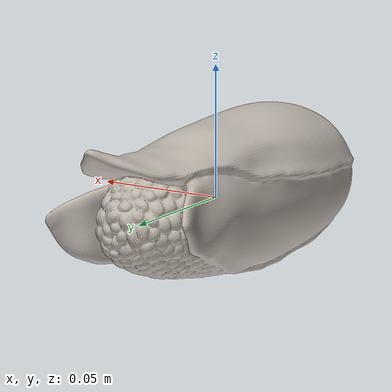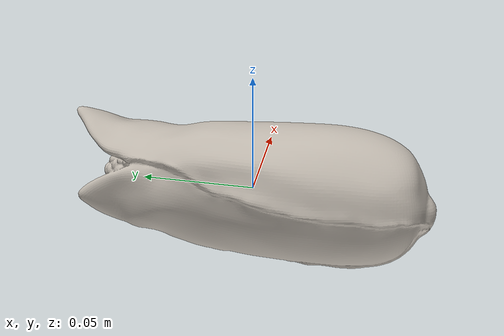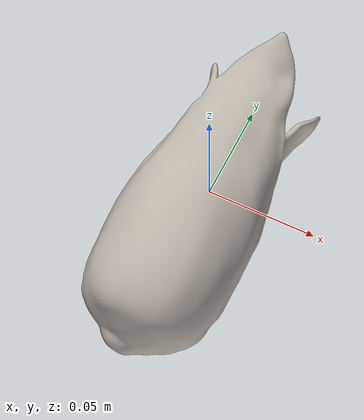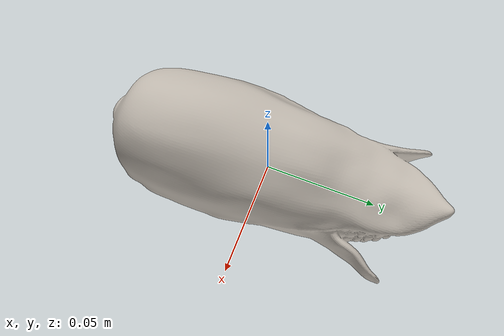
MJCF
<?xml version='1.0' encoding='utf-8'?>
<mujoco model="corn_11">
  <asset>
    <mesh file="visual/model_normalized_0.obj" name="model_normalized_0_vis" scale="0.15499999999999997 0.15499999999999997 0.15499999999999997" refquat="0.7071067811865475 0.7071067811865476 0.0 0.0" />
    <mesh file="collision/model_normalized_collision_22.obj" name="model_normalized_collision_22._coll" scale="0.15499999999999997 0.15499999999999997 0.15499999999999997" refquat="0.7071067811865475 0.7071067811865476 0.0 0.0" />
    <mesh file="collision/model_normalized_collision_23.obj" name="model_normalized_collision_23._coll" scale="0.15499999999999997 0.15499999999999997 0.15499999999999997" refquat="0.7071067811865475 0.7071067811865476 0.0 0.0" />
    <mesh file="collision/model_normalized_collision_21.obj" name="model_normalized_collision_21._coll" scale="0.15499999999999997 0.15499999999999997 0.15499999999999997" refquat="0.7071067811865475 0.7071067811865476 0.0 0.0" />
    <mesh file="collision/model_normalized_collision_20.obj" name="model_normalized_collision_20._coll" scale="0.15499999999999997 0.15499999999999997 0.15499999999999997" refquat="0.7071067811865475 0.7071067811865476 0.0 0.0" />
    <mesh file="collision/model_normalized_collision_24.obj" name="model_normalized_collision_24._coll" scale="0.15499999999999997 0.15499999999999997 0.15499999999999997" refquat="0.7071067811865475 0.7071067811865476 0.0 0.0" />
    <mesh file="collision/model_normalized_collision_30.obj" name="model_normalized_collision_30._coll" scale="0.15499999999999997 0.15499999999999997 0.15499999999999997" refquat="0.7071067811865475 0.7071067811865476 0.0 0.0" />
    <mesh file="collision/model_normalized_collision_18.obj" name="model_normalized_collision_18._coll" scale="0.15499999999999997 0.15499999999999997 0.15499999999999997" refquat="0.7071067811865475 0.7071067811865476 0.0 0.0" />
    <mesh file="collision/model_normalized_collision_19.obj" name="model_normalized_collision_19._coll" scale="0.15499999999999997 0.15499999999999997 0.15499999999999997" refquat="0.7071067811865475 0.7071067811865476 0.0 0.0" />
    <mesh file="collision/model_normalized_collision_31.obj" name="model_normalized_collision_31._coll" scale="0.15499999999999997 0.15499999999999997 0.15499999999999997" refquat="0.7071067811865475 0.7071067811865476 0.0 0.0" />
    <mesh file="collision/model_normalized_collision_25.obj" name="model_normalized_collision_25._coll" scale="0.15499999999999997 0.15499999999999997 0.15499999999999997" refquat="0.7071067811865475 0.7071067811865476 0.0 0.0" />
    <mesh file="collision/model_normalized_collision_27.obj" name="model_normalized_collision_27._coll" scale="0.15499999999999997 0.15499999999999997 0.15499999999999997" refquat="0.7071067811865475 0.7071067811865476 0.0 0.0" />
    <mesh file="collision/model_normalized_collision_26.obj" name="model_normalized_collision_26._coll" scale="0.15499999999999997 0.15499999999999997 0.15499999999999997" refquat="0.7071067811865475 0.7071067811865476 0.0 0.0" />
    <mesh file="collision/model_normalized_collision_9.obj" name="model_normalized_collision_9._coll" scale="0.15499999999999997 0.15499999999999997 0.15499999999999997" refquat="0.7071067811865475 0.7071067811865476 0.0 0.0" />
    <mesh file="collision/model_normalized_collision_8.obj" name="model_normalized_collision_8._coll" scale="0.15499999999999997 0.15499999999999997 0.15499999999999997" refquat="0.7071067811865475 0.7071067811865476 0.0 0.0" />
    <mesh file="collision/model_normalized_collision_6.obj" name="model_normalized_collision_6._coll" scale="0.15499999999999997 0.15499999999999997 0.15499999999999997" refquat="0.7071067811865475 0.7071067811865476 0.0 0.0" />
    <mesh file="collision/model_normalized_collision_7.obj" name="model_normalized_collision_7._coll" scale="0.15499999999999997 0.15499999999999997 0.15499999999999997" refquat="0.7071067811865475 0.7071067811865476 0.0 0.0" />
    <mesh file="collision/model_normalized_collision_5.obj" name="model_normalized_collision_5._coll" scale="0.15499999999999997 0.15499999999999997 0.15499999999999997" refquat="0.7071067811865475 0.7071067811865476 0.0 0.0" />
    <mesh file="collision/model_normalized_collision_4.obj" name="model_normalized_collision_4._coll" scale="0.15499999999999997 0.15499999999999997 0.15499999999999997" refquat="0.7071067811865475 0.7071067811865476 0.0 0.0" />
    <mesh file="collision/model_normalized_collision_0.obj" name="model_normalized_collision_0._coll" scale="0.15499999999999997 0.15499999999999997 0.15499999999999997" refquat="0.7071067811865475 0.7071067811865476 0.0 0.0" />
    <mesh file="collision/model_normalized_collision_1.obj" name="model_normalized_collision_1._coll" scale="0.15499999999999997 0.15499999999999997 0.15499999999999997" refquat="0.7071067811865475 0.7071067811865476 0.0 0.0" />
    <mesh file="collision/model_normalized_collision_3.obj" name="model_normalized_collision_3._coll" scale="0.15499999999999997 0.15499999999999997 0.15499999999999997" refquat="0.7071067811865475 0.7071067811865476 0.0 0.0" />
    <mesh file="collision/model_normalized_collision_2.obj" name="model_normalized_collision_2._coll" scale="0.15499999999999997 0.15499999999999997 0.15499999999999997" refquat="0.7071067811865475 0.7071067811865476 0.0 0.0" />
    <mesh file="collision/model_normalized_collision_17.obj" name="model_normalized_collision_17._coll" scale="0.15499999999999997 0.15499999999999997 0.15499999999999997" refquat="0.7071067811865475 0.7071067811865476 0.0 0.0" />
    <mesh file="collision/model_normalized_collision_16.obj" name="model_normalized_collision_16._coll" scale="0.15499999999999997 0.15499999999999997 0.15499999999999997" refquat="0.7071067811865475 0.7071067811865476 0.0 0.0" />
    <mesh file="collision/model_normalized_collision_28.obj" name="model_normalized_collision_28._coll" scale="0.15499999999999997 0.15499999999999997 0.15499999999999997" refquat="0.7071067811865475 0.7071067811865476 0.0 0.0" />
    <mesh file="collision/model_normalized_collision_14.obj" name="model_normalized_collision_14._coll" scale="0.15499999999999997 0.15499999999999997 0.15499999999999997" refquat="0.7071067811865475 0.7071067811865476 0.0 0.0" />
    <mesh file="collision/model_normalized_collision_15.obj" name="model_normalized_collision_15._coll" scale="0.15499999999999997 0.15499999999999997 0.15499999999999997" refquat="0.7071067811865475 0.7071067811865476 0.0 0.0" />
    <mesh file="collision/model_normalized_collision_29.obj" name="model_normalized_collision_29._coll" scale="0.15499999999999997 0.15499999999999997 0.15499999999999997" refquat="0.7071067811865475 0.7071067811865476 0.0 0.0" />
    <mesh file="collision/model_normalized_collision_11.obj" name="model_normalized_collision_11._coll" scale="0.15499999999999997 0.15499999999999997 0.15499999999999997" refquat="0.7071067811865475 0.7071067811865476 0.0 0.0" />
    <mesh file="collision/model_normalized_collision_10.obj" name="model_normalized_collision_10._coll" scale="0.15499999999999997 0.15499999999999997 0.15499999999999997" refquat="0.7071067811865475 0.7071067811865476 0.0 0.0" />
    <mesh file="collision/model_normalized_collision_12.obj" name="model_normalized_collision_12._coll" scale="0.15499999999999997 0.15499999999999997 0.15499999999999997" refquat="0.7071067811865475 0.7071067811865476 0.0 0.0" />
    <mesh file="collision/model_normalized_collision_13.obj" name="model_normalized_collision_13._coll" scale="0.15499999999999997 0.15499999999999997 0.15499999999999997" refquat="0.7071067811865475 0.7071067811865476 0.0 0.0" />
    <texture type="2d" name="image0" file="visual/image0.png" />
    <material name="Material.024" texture="image0" specular="0.5" shininess="0.25" />
  </asset>
  <default>
    <default class="region">
      <geom group="1" conaffinity="0" contype="0" rgba="0 1 0 0" />
    </default>
  </default>
  <worldbody>
    <body>
      <body name="object">
        <geom solimp="0.998 0.998 0.001" solref="0.001 1" density="100" friction="0.95 0.3 0.1" type="mesh" mesh="model_normalized_0_vis" conaffinity="0" contype="0" group="1" material="Material.024" />
        <geom solimp="0.998 0.998 0.001" solref="0.001 1" density="100" friction="0.95 0.3 0.1" type="mesh" mesh="model_normalized_collision_22._coll" group="0" rgba="0.8 0.8 0.8 0.0" />
        <geom solimp="0.998 0.998 0.001" solref="0.001 1" density="100" friction="0.95 0.3 0.1" type="mesh" mesh="model_normalized_collision_23._coll" group="0" rgba="0.8 0.8 0.8 0.0" />
        <geom solimp="0.998 0.998 0.001" solref="0.001 1" density="100" friction="0.95 0.3 0.1" type="mesh" mesh="model_normalized_collision_21._coll" group="0" rgba="0.8 0.8 0.8 0.0" />
        <geom solimp="0.998 0.998 0.001" solref="0.001 1" density="100" friction="0.95 0.3 0.1" type="mesh" mesh="model_normalized_collision_20._coll" group="0" rgba="0.8 0.8 0.8 0.0" />
        <geom solimp="0.998 0.998 0.001" solref="0.001 1" density="100" friction="0.95 0.3 0.1" type="mesh" mesh="model_normalized_collision_24._coll" group="0" rgba="0.8 0.8 0.8 0.0" />
        <geom solimp="0.998 0.998 0.001" solref="0.001 1" density="100" friction="0.95 0.3 0.1" type="mesh" mesh="model_normalized_collision_30._coll" group="0" rgba="0.8 0.8 0.8 0.0" />
        <geom solimp="0.998 0.998 0.001" solref="0.001 1" density="100" friction="0.95 0.3 0.1" type="mesh" mesh="model_normalized_collision_18._coll" group="0" rgba="0.8 0.8 0.8 0.0" />
        <geom solimp="0.998 0.998 0.001" solref="0.001 1" density="100" friction="0.95 0.3 0.1" type="mesh" mesh="model_normalized_collision_19._coll" group="0" rgba="0.8 0.8 0.8 0.0" />
        <geom solimp="0.998 0.998 0.001" solref="0.001 1" density="100" friction="0.95 0.3 0.1" type="mesh" mesh="model_normalized_collision_31._coll" group="0" rgba="0.8 0.8 0.8 0.0" />
        <geom solimp="0.998 0.998 0.001" solref="0.001 1" density="100" friction="0.95 0.3 0.1" type="mesh" mesh="model_normalized_collision_25._coll" group="0" rgba="0.8 0.8 0.8 0.0" />
        <geom solimp="0.998 0.998 0.001" solref="0.001 1" density="100" friction="0.95 0.3 0.1" type="mesh" mesh="model_normalized_collision_27._coll" group="0" rgba="0.8 0.8 0.8 0.0" />
        <geom solimp="0.998 0.998 0.001" solref="0.001 1" density="100" friction="0.95 0.3 0.1" type="mesh" mesh="model_normalized_collision_26._coll" group="0" rgba="0.8 0.8 0.8 0.0" />
        <geom solimp="0.998 0.998 0.001" solref="0.001 1" density="100" friction="0.95 0.3 0.1" type="mesh" mesh="model_normalized_collision_9._coll" group="0" rgba="0.8 0.8 0.8 0.0" />
        <geom solimp="0.998 0.998 0.001" solref="0.001 1" density="100" friction="0.95 0.3 0.1" type="mesh" mesh="model_normalized_collision_8._coll" group="0" rgba="0.8 0.8 0.8 0.0" />
        <geom solimp="0.998 0.998 0.001" solref="0.001 1" density="100" friction="0.95 0.3 0.1" type="mesh" mesh="model_normalized_collision_6._coll" group="0" rgba="0.8 0.8 0.8 0.0" />
        <geom solimp="0.998 0.998 0.001" solref="0.001 1" density="100" friction="0.95 0.3 0.1" type="mesh" mesh="model_normalized_collision_7._coll" group="0" rgba="0.8 0.8 0.8 0.0" />
        <geom solimp="0.998 0.998 0.001" solref="0.001 1" density="100" friction="0.95 0.3 0.1" type="mesh" mesh="model_normalized_collision_5._coll" group="0" rgba="0.8 0.8 0.8 0.0" />
        <geom solimp="0.998 0.998 0.001" solref="0.001 1" density="100" friction="0.95 0.3 0.1" type="mesh" mesh="model_normalized_collision_4._coll" group="0" rgba="0.8 0.8 0.8 0.0" />
        <geom solimp="0.998 0.998 0.001" solref="0.001 1" density="100" friction="0.95 0.3 0.1" type="mesh" mesh="model_normalized_collision_0._coll" group="0" rgba="0.8 0.8 0.8 0.0" />
        <geom solimp="0.998 0.998 0.001" solref="0.001 1" density="100" friction="0.95 0.3 0.1" type="mesh" mesh="model_normalized_collision_1._coll" group="0" rgba="0.8 0.8 0.8 0.0" />
        <geom solimp="0.998 0.998 0.001" solref="0.001 1" density="100" friction="0.95 0.3 0.1" type="mesh" mesh="model_normalized_collision_3._coll" group="0" rgba="0.8 0.8 0.8 0.0" />
        <geom solimp="0.998 0.998 0.001" solref="0.001 1" density="100" friction="0.95 0.3 0.1" type="mesh" mesh="model_normalized_collision_2._coll" group="0" rgba="0.8 0.8 0.8 0.0" />
        <geom solimp="0.998 0.998 0.001" solref="0.001 1" density="100" friction="0.95 0.3 0.1" type="mesh" mesh="model_normalized_collision_17._coll" group="0" rgba="0.8 0.8 0.8 0.0" />
        <geom solimp="0.998 0.998 0.001" solref="0.001 1" density="100" friction="0.95 0.3 0.1" type="mesh" mesh="model_normalized_collision_16._coll" group="0" rgba="0.8 0.8 0.8 0.0" />
        <geom solimp="0.998 0.998 0.001" solref="0.001 1" density="100" friction="0.95 0.3 0.1" type="mesh" mesh="model_normalized_collision_28._coll" group="0" rgba="0.8 0.8 0.8 0.0" />
        <geom solimp="0.998 0.998 0.001" solref="0.001 1" density="100" friction="0.95 0.3 0.1" type="mesh" mesh="model_normalized_collision_14._coll" group="0" rgba="0.8 0.8 0.8 0.0" />
        <geom solimp="0.998 0.998 0.001" solref="0.001 1" density="100" friction="0.95 0.3 0.1" type="mesh" mesh="model_normalized_collision_15._coll" group="0" rgba="0.8 0.8 0.8 0.0" />
        <geom solimp="0.998 0.998 0.001" solref="0.001 1" density="100" friction="0.95 0.3 0.1" type="mesh" mesh="model_normalized_collision_29._coll" group="0" rgba="0.8 0.8 0.8 0.0" />
        <geom solimp="0.998 0.998 0.001" solref="0.001 1" density="100" friction="0.95 0.3 0.1" type="mesh" mesh="model_normalized_collision_11._coll" group="0" rgba="0.8 0.8 0.8 0.0" />
        <geom solimp="0.998 0.998 0.001" solref="0.001 1" density="100" friction="0.95 0.3 0.1" type="mesh" mesh="model_normalized_collision_10._coll" group="0" rgba="0.8 0.8 0.8 0.0" />
        <geom solimp="0.998 0.998 0.001" solref="0.001 1" density="100" friction="0.95 0.3 0.1" type="mesh" mesh="model_normalized_collision_12._coll" group="0" rgba="0.8 0.8 0.8 0.0" />
        <geom solimp="0.998 0.998 0.001" solref="0.001 1" density="100" friction="0.95 0.3 0.1" type="mesh" mesh="model_normalized_collision_13._coll" group="0" rgba="0.8 0.8 0.8 0.0" />
        <geom class="region" name="reg_bbox" type="box" pos="0.00043843687500000014 0.0004350090500000018 0.00019980352500000194" size="0.031661707399999996 0.07701245524999999 0.030704363074999998" />
      </body>
    <site rgba="0 0 0 0" size="0.005" pos="0 0 -0.03050456" name="bottom_site" /><site rgba="0 0 0 0" size="0.005" pos="0 0 0.030904167" name="top_site" /><site rgba="0 0 0 0" size="0.005" pos="0.077447464 0.077447464 0" name="horizontal_radius_site" /></body>
  </worldbody>
</mujoco>
